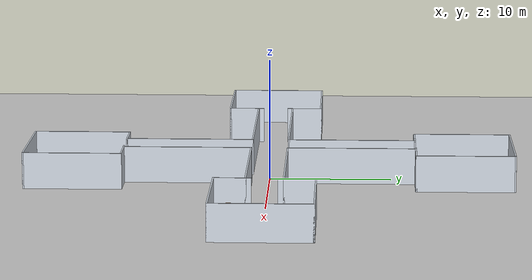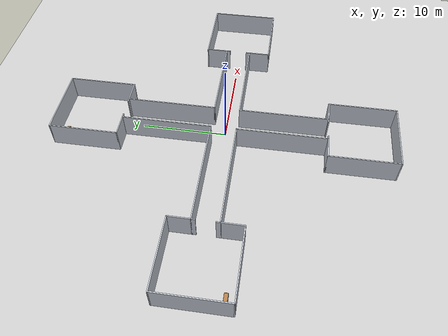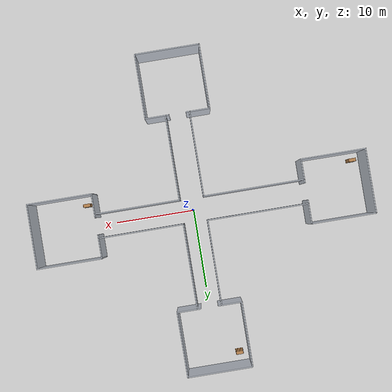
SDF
<sdf version="1.6">
 <world name="semantic_cross_junction">
  <model name="ground_plane">
   <static>true</static>
   <link name="link">
    <collision name="collision">
     <geometry><plane><normal>0 0 1</normal><size>60 60</size></plane></geometry>
    </collision>
    <visual name="visual">
     <geometry><plane><normal>0 0 1</normal><size>60 60</size></plane></geometry>
     <material>
      <script><uri>file://media/materials/scripts/gazebo.material</uri><name>Gazebo/Grey</name></script>
     </material>
    </visual>
   </link>
  </model>
  <model name="semantic_room_structure">
   <static>true</static>
   <link name="walls">
    <collision name="wall_0_collision">
     <pose>0.0 -20.0 1.5 0 0 0.0</pose>
     <geometry><box><size>8.12 0.12 3</size></box></geometry>
    </collision>
    <visual name="wall_0_visual">
     <pose>0.0 -20.0 1.5 0 0 0.0</pose>
     <geometry><box><size>8.12 0.12 3</size></box></geometry>
     <material><ambient>0.82 0.85 0.89 1</ambient><diffuse>0.82 0.85 0.89 1</diffuse></material>
    </visual>
    <collision name="wall_1_collision">
     <pose>-2.75 -12.0 1.5 0 0 0.0</pose>
     <geometry><box><size>2.62 0.12 3</size></box></geometry>
    </collision>
    <visual name="wall_1_visual">
     <pose>-2.75 -12.0 1.5 0 0 0.0</pose>
     <geometry><box><size>2.62 0.12 3</size></box></geometry>
     <material><ambient>0.82 0.85 0.89 1</ambient><diffuse>0.82 0.85 0.89 1</diffuse></material>
    </visual>
    <collision name="wall_2_collision">
     <pose>2.75 -12.0 1.5 0 0 0.0</pose>
     <geometry><box><size>2.62 0.12 3</size></box></geometry>
    </collision>
    <visual name="wall_2_visual">
     <pose>2.75 -12.0 1.5 0 0 0.0</pose>
     <geometry><box><size>2.62 0.12 3</size></box></geometry>
     <material><ambient>0.82 0.85 0.89 1</ambient><diffuse>0.82 0.85 0.89 1</diffuse></material>
    </visual>
    <collision name="wall_3_collision">
     <pose>-18.0 -4.0 1.5 0 0 0.0</pose>
     <geometry><box><size>8.12 0.12 3</size></box></geometry>
    </collision>
    <visual name="wall_3_visual">
     <pose>-18.0 -4.0 1.5 0 0 0.0</pose>
     <geometry><box><size>8.12 0.12 3</size></box></geometry>
     <material><ambient>0.82 0.85 0.89 1</ambient><diffuse>0.82 0.85 0.89 1</diffuse></material>
    </visual>
    <collision name="wall_4_collision">
     <pose>16.0 -4.0 1.5 0 0 0.0</pose>
     <geometry><box><size>8.12 0.12 3</size></box></geometry>
    </collision>
    <visual name="wall_4_visual">
     <pose>16.0 -4.0 1.5 0 0 0.0</pose>
     <geometry><box><size>8.12 0.12 3</size></box></geometry>
     <material><ambient>0.82 0.85 0.89 1</ambient><diffuse>0.82 0.85 0.89 1</diffuse></material>
    </visual>
    <collision name="wall_5_collision">
     <pose>-7.75 -1.5 1.5 0 0 0.0</pose>
     <geometry><box><size>12.62 0.12 3</size></box></geometry>
    </collision>
    <visual name="wall_5_visual">
     <pose>-7.75 -1.5 1.5 0 0 0.0</pose>
     <geometry><box><size>12.62 0.12 3</size></box></geometry>
     <material><ambient>0.82 0.85 0.89 1</ambient><diffuse>0.82 0.85 0.89 1</diffuse></material>
    </visual>
    <collision name="wall_6_collision">
     <pose>6.75 -1.5 1.5 0 0 0.0</pose>
     <geometry><box><size>10.62 0.12 3</size></box></geometry>
    </collision>
    <visual name="wall_6_visual">
     <pose>6.75 -1.5 1.5 0 0 0.0</pose>
     <geometry><box><size>10.62 0.12 3</size></box></geometry>
     <material><ambient>0.82 0.85 0.89 1</ambient><diffuse>0.82 0.85 0.89 1</diffuse></material>
    </visual>
    <collision name="wall_7_collision">
     <pose>-7.75 1.5 1.5 0 0 0.0</pose>
     <geometry><box><size>12.62 0.12 3</size></box></geometry>
    </collision>
    <visual name="wall_7_visual">
     <pose>-7.75 1.5 1.5 0 0 0.0</pose>
     <geometry><box><size>12.62 0.12 3</size></box></geometry>
     <material><ambient>0.82 0.85 0.89 1</ambient><diffuse>0.82 0.85 0.89 1</diffuse></material>
    </visual>
    <collision name="wall_8_collision">
     <pose>6.75 1.5 1.5 0 0 0.0</pose>
     <geometry><box><size>10.62 0.12 3</size></box></geometry>
    </collision>
    <visual name="wall_8_visual">
     <pose>6.75 1.5 1.5 0 0 0.0</pose>
     <geometry><box><size>10.62 0.12 3</size></box></geometry>
     <material><ambient>0.82 0.85 0.89 1</ambient><diffuse>0.82 0.85 0.89 1</diffuse></material>
    </visual>
    <collision name="wall_9_collision">
     <pose>-18.0 4.0 1.5 0 0 0.0</pose>
     <geometry><box><size>8.12 0.12 3</size></box></geometry>
    </collision>
    <visual name="wall_9_visual">
     <pose>-18.0 4.0 1.5 0 0 0.0</pose>
     <geometry><box><size>8.12 0.12 3</size></box></geometry>
     <material><ambient>0.82 0.85 0.89 1</ambient><diffuse>0.82 0.85 0.89 1</diffuse></material>
    </visual>
    <collision name="wall_10_collision">
     <pose>16.0 4.0 1.5 0 0 0.0</pose>
     <geometry><box><size>8.12 0.12 3</size></box></geometry>
    </collision>
    <visual name="wall_10_visual">
     <pose>16.0 4.0 1.5 0 0 0.0</pose>
     <geometry><box><size>8.12 0.12 3</size></box></geometry>
     <material><ambient>0.82 0.85 0.89 1</ambient><diffuse>0.82 0.85 0.89 1</diffuse></material>
    </visual>
    <collision name="wall_11_collision">
     <pose>-2.75 12.0 1.5 0 0 0.0</pose>
     <geometry><box><size>2.62 0.12 3</size></box></geometry>
    </collision>
    <visual name="wall_11_visual">
     <pose>-2.75 12.0 1.5 0 0 0.0</pose>
     <geometry><box><size>2.62 0.12 3</size></box></geometry>
     <material><ambient>0.82 0.85 0.89 1</ambient><diffuse>0.82 0.85 0.89 1</diffuse></material>
    </visual>
    <collision name="wall_12_collision">
     <pose>2.75 12.0 1.5 0 0 0.0</pose>
     <geometry><box><size>2.62 0.12 3</size></box></geometry>
    </collision>
    <visual name="wall_12_visual">
     <pose>2.75 12.0 1.5 0 0 0.0</pose>
     <geometry><box><size>2.62 0.12 3</size></box></geometry>
     <material><ambient>0.82 0.85 0.89 1</ambient><diffuse>0.82 0.85 0.89 1</diffuse></material>
    </visual>
    <collision name="wall_13_collision">
     <pose>0.0 20.0 1.5 0 0 0.0</pose>
     <geometry><box><size>8.12 0.12 3</size></box></geometry>
    </collision>
    <visual name="wall_13_visual">
     <pose>0.0 20.0 1.5 0 0 0.0</pose>
     <geometry><box><size>8.12 0.12 3</size></box></geometry>
     <material><ambient>0.82 0.85 0.89 1</ambient><diffuse>0.82 0.85 0.89 1</diffuse></material>
    </visual>
    <collision name="wall_14_collision">
     <pose>-22.0 0.0 1.5 0 0 1.5707963267948966</pose>
     <geometry><box><size>8.12 0.12 3</size></box></geometry>
    </collision>
    <visual name="wall_14_visual">
     <pose>-22.0 0.0 1.5 0 0 1.5707963267948966</pose>
     <geometry><box><size>8.12 0.12 3</size></box></geometry>
     <material><ambient>0.82 0.85 0.89 1</ambient><diffuse>0.82 0.85 0.89 1</diffuse></material>
    </visual>
    <collision name="wall_15_collision">
     <pose>-14.0 -2.75 1.5 0 0 1.5707963267948966</pose>
     <geometry><box><size>2.62 0.12 3</size></box></geometry>
    </collision>
    <visual name="wall_15_visual">
     <pose>-14.0 -2.75 1.5 0 0 1.5707963267948966</pose>
     <geometry><box><size>2.62 0.12 3</size></box></geometry>
     <material><ambient>0.82 0.85 0.89 1</ambient><diffuse>0.82 0.85 0.89 1</diffuse></material>
    </visual>
    <collision name="wall_16_collision">
     <pose>-14.0 2.75 1.5 0 0 1.5707963267948966</pose>
     <geometry><box><size>2.62 0.12 3</size></box></geometry>
    </collision>
    <visual name="wall_16_visual">
     <pose>-14.0 2.75 1.5 0 0 1.5707963267948966</pose>
     <geometry><box><size>2.62 0.12 3</size></box></geometry>
     <material><ambient>0.82 0.85 0.89 1</ambient><diffuse>0.82 0.85 0.89 1</diffuse></material>
    </visual>
    <collision name="wall_17_collision">
     <pose>-4.0 -16.0 1.5 0 0 1.5707963267948966</pose>
     <geometry><box><size>8.12 0.12 3</size></box></geometry>
    </collision>
    <visual name="wall_17_visual">
     <pose>-4.0 -16.0 1.5 0 0 1.5707963267948966</pose>
     <geometry><box><size>8.12 0.12 3</size></box></geometry>
     <material><ambient>0.82 0.85 0.89 1</ambient><diffuse>0.82 0.85 0.89 1</diffuse></material>
    </visual>
    <collision name="wall_18_collision">
     <pose>-4.0 16.0 1.5 0 0 1.5707963267948966</pose>
     <geometry><box><size>8.12 0.12 3</size></box></geometry>
    </collision>
    <visual name="wall_18_visual">
     <pose>-4.0 16.0 1.5 0 0 1.5707963267948966</pose>
     <geometry><box><size>8.12 0.12 3</size></box></geometry>
     <material><ambient>0.82 0.85 0.89 1</ambient><diffuse>0.82 0.85 0.89 1</diffuse></material>
    </visual>
    <collision name="wall_19_collision">
     <pose>-1.5 -6.75 1.5 0 0 1.5707963267948966</pose>
     <geometry><box><size>10.62 0.12 3</size></box></geometry>
    </collision>
    <visual name="wall_19_visual">
     <pose>-1.5 -6.75 1.5 0 0 1.5707963267948966</pose>
     <geometry><box><size>10.62 0.12 3</size></box></geometry>
     <material><ambient>0.82 0.85 0.89 1</ambient><diffuse>0.82 0.85 0.89 1</diffuse></material>
    </visual>
    <collision name="wall_20_collision">
     <pose>-1.5 6.75 1.5 0 0 1.5707963267948966</pose>
     <geometry><box><size>10.62 0.12 3</size></box></geometry>
    </collision>
    <visual name="wall_20_visual">
     <pose>-1.5 6.75 1.5 0 0 1.5707963267948966</pose>
     <geometry><box><size>10.62 0.12 3</size></box></geometry>
     <material><ambient>0.82 0.85 0.89 1</ambient><diffuse>0.82 0.85 0.89 1</diffuse></material>
    </visual>
    <collision name="wall_21_collision">
     <pose>1.5 -6.75 1.5 0 0 1.5707963267948966</pose>
     <geometry><box><size>10.62 0.12 3</size></box></geometry>
    </collision>
    <visual name="wall_21_visual">
     <pose>1.5 -6.75 1.5 0 0 1.5707963267948966</pose>
     <geometry><box><size>10.62 0.12 3</size></box></geometry>
     <material><ambient>0.82 0.85 0.89 1</ambient><diffuse>0.82 0.85 0.89 1</diffuse></material>
    </visual>
    <collision name="wall_22_collision">
     <pose>1.5 6.75 1.5 0 0 1.5707963267948966</pose>
     <geometry><box><size>10.62 0.12 3</size></box></geometry>
    </collision>
    <visual name="wall_22_visual">
     <pose>1.5 6.75 1.5 0 0 1.5707963267948966</pose>
     <geometry><box><size>10.62 0.12 3</size></box></geometry>
     <material><ambient>0.82 0.85 0.89 1</ambient><diffuse>0.82 0.85 0.89 1</diffuse></material>
    </visual>
    <collision name="wall_23_collision">
     <pose>4.0 -16.0 1.5 0 0 1.5707963267948966</pose>
     <geometry><box><size>8.12 0.12 3</size></box></geometry>
    </collision>
    <visual name="wall_23_visual">
     <pose>4.0 -16.0 1.5 0 0 1.5707963267948966</pose>
     <geometry><box><size>8.12 0.12 3</size></box></geometry>
     <material><ambient>0.82 0.85 0.89 1</ambient><diffuse>0.82 0.85 0.89 1</diffuse></material>
    </visual>
    <collision name="wall_24_collision">
     <pose>4.0 16.0 1.5 0 0 1.5707963267948966</pose>
     <geometry><box><size>8.12 0.12 3</size></box></geometry>
    </collision>
    <visual name="wall_24_visual">
     <pose>4.0 16.0 1.5 0 0 1.5707963267948966</pose>
     <geometry><box><size>8.12 0.12 3</size></box></geometry>
     <material><ambient>0.82 0.85 0.89 1</ambient><diffuse>0.82 0.85 0.89 1</diffuse></material>
    </visual>
    <collision name="wall_25_collision">
     <pose>12.0 -2.75 1.5 0 0 1.5707963267948966</pose>
     <geometry><box><size>2.62 0.12 3</size></box></geometry>
    </collision>
    <visual name="wall_25_visual">
     <pose>12.0 -2.75 1.5 0 0 1.5707963267948966</pose>
     <geometry><box><size>2.62 0.12 3</size></box></geometry>
     <material><ambient>0.82 0.85 0.89 1</ambient><diffuse>0.82 0.85 0.89 1</diffuse></material>
    </visual>
    <collision name="wall_26_collision">
     <pose>12.0 2.75 1.5 0 0 1.5707963267948966</pose>
     <geometry><box><size>2.62 0.12 3</size></box></geometry>
    </collision>
    <visual name="wall_26_visual">
     <pose>12.0 2.75 1.5 0 0 1.5707963267948966</pose>
     <geometry><box><size>2.62 0.12 3</size></box></geometry>
     <material><ambient>0.82 0.85 0.89 1</ambient><diffuse>0.82 0.85 0.89 1</diffuse></material>
    </visual>
    <collision name="wall_27_collision">
     <pose>20.0 0.0 1.5 0 0 1.5707963267948966</pose>
     <geometry><box><size>8.12 0.12 3</size></box></geometry>
    </collision>
    <visual name="wall_27_visual">
     <pose>20.0 0.0 1.5 0 0 1.5707963267948966</pose>
     <geometry><box><size>8.12 0.12 3</size></box></geometry>
     <material><ambient>0.82 0.85 0.89 1</ambient><diffuse>0.82 0.85 0.89 1</diffuse></material>
    </visual>
    <collision name="wall_28_collision">
     <pose>-14.0 -1.3 1.5 0 0 1.5707963267948966</pose>
     <geometry><box><size>0.5199999999999999 0.12 3</size></box></geometry>
    </collision>
    <visual name="wall_28_visual">
     <pose>-14.0 -1.3 1.5 0 0 1.5707963267948966</pose>
     <geometry><box><size>0.5199999999999999 0.12 3</size></box></geometry>
     <material><ambient>0.82 0.85 0.89 1</ambient><diffuse>0.82 0.85 0.89 1</diffuse></material>
    </visual>
    <collision name="wall_29_collision">
     <pose>-14.0 1.3 1.5 0 0 1.5707963267948966</pose>
     <geometry><box><size>0.5199999999999999 0.12 3</size></box></geometry>
    </collision>
    <visual name="wall_29_visual">
     <pose>-14.0 1.3 1.5 0 0 1.5707963267948966</pose>
     <geometry><box><size>0.5199999999999999 0.12 3</size></box></geometry>
     <material><ambient>0.82 0.85 0.89 1</ambient><diffuse>0.82 0.85 0.89 1</diffuse></material>
    </visual>
    <collision name="wall_30_collision">
     <pose>12.0 -1.3 1.5 0 0 1.5707963267948966</pose>
     <geometry><box><size>0.5199999999999999 0.12 3</size></box></geometry>
    </collision>
    <visual name="wall_30_visual">
     <pose>12.0 -1.3 1.5 0 0 1.5707963267948966</pose>
     <geometry><box><size>0.5199999999999999 0.12 3</size></box></geometry>
     <material><ambient>0.82 0.85 0.89 1</ambient><diffuse>0.82 0.85 0.89 1</diffuse></material>
    </visual>
    <collision name="wall_31_collision">
     <pose>12.0 1.3 1.5 0 0 1.5707963267948966</pose>
     <geometry><box><size>0.5199999999999999 0.12 3</size></box></geometry>
    </collision>
    <visual name="wall_31_visual">
     <pose>12.0 1.3 1.5 0 0 1.5707963267948966</pose>
     <geometry><box><size>0.5199999999999999 0.12 3</size></box></geometry>
     <material><ambient>0.82 0.85 0.89 1</ambient><diffuse>0.82 0.85 0.89 1</diffuse></material>
    </visual>
    <collision name="wall_32_collision">
     <pose>-1.3 12.0 1.5 0 0 0.0</pose>
     <geometry><box><size>0.5199999999999999 0.12 3</size></box></geometry>
    </collision>
    <visual name="wall_32_visual">
     <pose>-1.3 12.0 1.5 0 0 0.0</pose>
     <geometry><box><size>0.5199999999999999 0.12 3</size></box></geometry>
     <material><ambient>0.82 0.85 0.89 1</ambient><diffuse>0.82 0.85 0.89 1</diffuse></material>
    </visual>
    <collision name="wall_33_collision">
     <pose>1.3 12.0 1.5 0 0 0.0</pose>
     <geometry><box><size>0.5199999999999999 0.12 3</size></box></geometry>
    </collision>
    <visual name="wall_33_visual">
     <pose>1.3 12.0 1.5 0 0 0.0</pose>
     <geometry><box><size>0.5199999999999999 0.12 3</size></box></geometry>
     <material><ambient>0.82 0.85 0.89 1</ambient><diffuse>0.82 0.85 0.89 1</diffuse></material>
    </visual>
    <collision name="wall_34_collision">
     <pose>-1.3 -12.0 1.5 0 0 0.0</pose>
     <geometry><box><size>0.5199999999999999 0.12 3</size></box></geometry>
    </collision>
    <visual name="wall_34_visual">
     <pose>-1.3 -12.0 1.5 0 0 0.0</pose>
     <geometry><box><size>0.5199999999999999 0.12 3</size></box></geometry>
     <material><ambient>0.82 0.85 0.89 1</ambient><diffuse>0.82 0.85 0.89 1</diffuse></material>
    </visual>
    <collision name="wall_35_collision">
     <pose>1.3 -12.0 1.5 0 0 0.0</pose>
     <geometry><box><size>0.5199999999999999 0.12 3</size></box></geometry>
    </collision>
    <visual name="wall_35_visual">
     <pose>1.3 -12.0 1.5 0 0 0.0</pose>
     <geometry><box><size>0.5199999999999999 0.12 3</size></box></geometry>
     <material><ambient>0.82 0.85 0.89 1</ambient><diffuse>0.82 0.85 0.89 1</diffuse></material>
    </visual>
   </link>
  </model>
  <model name="west_lounge_bookshelf_5">
   <link name="link">
    <inertial><mass>1.0</mass></inertial>
    <collision name="back">
     <pose>0 0.005 0.6 0 0 0</pose>
     <geometry><box><size>0.9 0.01 1.2</size></box></geometry>
    </collision>
    <visual name="visual1">
     <pose>0 0.005 0.6 0 0 0</pose>
     <geometry><box><size>0.9 0.01 1.2</size></box></geometry>
     <material>
      <script><uri>file://media/materials/scripts/gazebo.material</uri><name>Gazebo/Wood</name></script>
     </material>
    </visual>
    <collision name="left_side">
     <pose>0.45 -0.195 0.6 0 0 0</pose>
     <geometry><box><size>0.02 0.4 1.2</size></box></geometry>
    </collision>
    <visual name="visual2">
     <pose>0.45 -0.195 0.6 0 0 0</pose>
     <geometry><box><size>0.02 0.4 1.2</size></box></geometry>
     <material>
      <script><uri>file://media/materials/scripts/gazebo.material</uri><name>Gazebo/Wood</name></script>
     </material>
    </visual>
    <collision name="right_side">
     <pose>-0.45 -0.195 0.6 0 0 0</pose>
     <geometry><box><size>0.02 0.4 1.2</size></box></geometry>
    </collision>
    <visual name="visual3">
     <pose>-0.45 -0.195 0.6 0 0 0</pose>
     <geometry><box><size>0.02 0.4 1.2</size></box></geometry>
     <material>
      <script><uri>file://media/materials/scripts/gazebo.material</uri><name>Gazebo/Wood</name></script>
     </material>
    </visual>
    <collision name="bottom">
     <pose>0 -0.195 0.03 0 0 0</pose>
     <geometry><box><size>0.88 0.4 0.06</size></box></geometry>
    </collision>
    <visual name="visual4">
     <pose>0 -0.195 0.03 0 0 0</pose>
     <geometry><box><size>0.88 0.4 0.06</size></box></geometry>
     <material>
      <script><uri>file://media/materials/scripts/gazebo.material</uri><name>Gazebo/Wood</name></script>
     </material>
    </visual>
    <collision name="top">
     <pose>0 -0.195 1.19 0 0 0</pose>
     <geometry><box><size>0.88 0.4 0.02</size></box></geometry>
    </collision>
    <visual name="visual5">
     <pose>0 -0.195 1.19 0 0 0</pose>
     <geometry><box><size>0.88 0.4 0.02</size></box></geometry>
     <material>
      <script><uri>file://media/materials/scripts/gazebo.material</uri><name>Gazebo/Wood</name></script>
     </material>
    </visual>
    <collision name="low_shelf">
     <pose>0 -0.195 0.43 0 0 0</pose>
     <geometry><box><size>0.88 0.4 0.02</size></box></geometry>
    </collision>
    <visual name="visual6">
     <pose>0 -0.195 0.43 0 0 0</pose>
     <geometry><box><size>0.88 0.4 0.02</size></box></geometry>
     <material>
      <script><uri>file://media/materials/scripts/gazebo.material</uri><name>Gazebo/Wood</name></script>
     </material>
    </visual>
    <collision name="high_shelf">
     <pose>0 -0.195 0.8 0 0 0</pose>
     <geometry><box><size>0.88 0.4 0.02</size></box></geometry>
    </collision>
    <visual name="visual7">
     <pose>0 -0.195 0.8 0 0 0</pose>
     <geometry><box><size>0.88 0.4 0.02</size></box></geometry>
     <material>
      <script><uri>file://media/materials/scripts/gazebo.material</uri><name>Gazebo/Wood</name></script>
     </material>
    </visual>
   </link>
   <pose>-20.8 -2.8 0 0 0 0</pose>
   <static>true</static>
  </model>
  <model name="east_office_bookshelf_12">
   <link name="link">
    <inertial><mass>1.0</mass></inertial>
    <collision name="back">
     <pose>0 0.005 0.6 0 0 0</pose>
     <geometry><box><size>0.9 0.01 1.2</size></box></geometry>
    </collision>
    <visual name="visual1">
     <pose>0 0.005 0.6 0 0 0</pose>
     <geometry><box><size>0.9 0.01 1.2</size></box></geometry>
     <material>
      <script><uri>file://media/materials/scripts/gazebo.material</uri><name>Gazebo/Wood</name></script>
     </material>
    </visual>
    <collision name="left_side">
     <pose>0.45 -0.195 0.6 0 0 0</pose>
     <geometry><box><size>0.02 0.4 1.2</size></box></geometry>
    </collision>
    <visual name="visual2">
     <pose>0.45 -0.195 0.6 0 0 0</pose>
     <geometry><box><size>0.02 0.4 1.2</size></box></geometry>
     <material>
      <script><uri>file://media/materials/scripts/gazebo.material</uri><name>Gazebo/Wood</name></script>
     </material>
    </visual>
    <collision name="right_side">
     <pose>-0.45 -0.195 0.6 0 0 0</pose>
     <geometry><box><size>0.02 0.4 1.2</size></box></geometry>
    </collision>
    <visual name="visual3">
     <pose>-0.45 -0.195 0.6 0 0 0</pose>
     <geometry><box><size>0.02 0.4 1.2</size></box></geometry>
     <material>
      <script><uri>file://media/materials/scripts/gazebo.material</uri><name>Gazebo/Wood</name></script>
     </material>
    </visual>
    <collision name="bottom">
     <pose>0 -0.195 0.03 0 0 0</pose>
     <geometry><box><size>0.88 0.4 0.06</size></box></geometry>
    </collision>
    <visual name="visual4">
     <pose>0 -0.195 0.03 0 0 0</pose>
     <geometry><box><size>0.88 0.4 0.06</size></box></geometry>
     <material>
      <script><uri>file://media/materials/scripts/gazebo.material</uri><name>Gazebo/Wood</name></script>
     </material>
    </visual>
    <collision name="top">
     <pose>0 -0.195 1.19 0 0 0</pose>
     <geometry><box><size>0.88 0.4 0.02</size></box></geometry>
    </collision>
    <visual name="visual5">
     <pose>0 -0.195 1.19 0 0 0</pose>
     <geometry><box><size>0.88 0.4 0.02</size></box></geometry>
     <material>
      <script><uri>file://media/materials/scripts/gazebo.material</uri><name>Gazebo/Wood</name></script>
     </material>
    </visual>
    <collision name="low_shelf">
     <pose>0 -0.195 0.43 0 0 0</pose>
     <geometry><box><size>0.88 0.4 0.02</size></box></geometry>
    </collision>
    <visual name="visual6">
     <pose>0 -0.195 0.43 0 0 0</pose>
     <geometry><box><size>0.88 0.4 0.02</size></box></geometry>
     <material>
      <script><uri>file://media/materials/scripts/gazebo.material</uri><name>Gazebo/Wood</name></script>
     </material>
    </visual>
    <collision name="high_shelf">
     <pose>0 -0.195 0.8 0 0 0</pose>
     <geometry><box><size>0.88 0.4 0.02</size></box></geometry>
    </collision>
    <visual name="visual7">
     <pose>0 -0.195 0.8 0 0 0</pose>
     <geometry><box><size>0.88 0.4 0.02</size></box></geometry>
     <material>
      <script><uri>file://media/materials/scripts/gazebo.material</uri><name>Gazebo/Wood</name></script>
     </material>
    </visual>
   </link>
   <pose>13.2 -2.6 0 0 0 0</pose>
   <static>true</static>
  </model>
  <model name="north_meeting_bookshelf_11">
   <link name="link">
    <inertial><mass>1.0</mass></inertial>
    <collision name="back">
     <pose>0 0.005 0.6 0 0 0</pose>
     <geometry><box><size>0.9 0.01 1.2</size></box></geometry>
    </collision>
    <visual name="visual1">
     <pose>0 0.005 0.6 0 0 0</pose>
     <geometry><box><size>0.9 0.01 1.2</size></box></geometry>
     <material>
      <script><uri>file://media/materials/scripts/gazebo.material</uri><name>Gazebo/Wood</name></script>
     </material>
    </visual>
    <collision name="left_side">
     <pose>0.45 -0.195 0.6 0 0 0</pose>
     <geometry><box><size>0.02 0.4 1.2</size></box></geometry>
    </collision>
    <visual name="visual2">
     <pose>0.45 -0.195 0.6 0 0 0</pose>
     <geometry><box><size>0.02 0.4 1.2</size></box></geometry>
     <material>
      <script><uri>file://media/materials/scripts/gazebo.material</uri><name>Gazebo/Wood</name></script>
     </material>
    </visual>
    <collision name="right_side">
     <pose>-0.45 -0.195 0.6 0 0 0</pose>
     <geometry><box><size>0.02 0.4 1.2</size></box></geometry>
    </collision>
    <visual name="visual3">
     <pose>-0.45 -0.195 0.6 0 0 0</pose>
     <geometry><box><size>0.02 0.4 1.2</size></box></geometry>
     <material>
      <script><uri>file://media/materials/scripts/gazebo.material</uri><name>Gazebo/Wood</name></script>
     </material>
    </visual>
    <collision name="bottom">
     <pose>0 -0.195 0.03 0 0 0</pose>
     <geometry><box><size>0.88 0.4 0.06</size></box></geometry>
    </collision>
    <visual name="visual4">
     <pose>0 -0.195 0.03 0 0 0</pose>
     <geometry><box><size>0.88 0.4 0.06</size></box></geometry>
     <material>
      <script><uri>file://media/materials/scripts/gazebo.material</uri><name>Gazebo/Wood</name></script>
     </material>
    </visual>
    <collision name="top">
     <pose>0 -0.195 1.19 0 0 0</pose>
     <geometry><box><size>0.88 0.4 0.02</size></box></geometry>
    </collision>
    <visual name="visual5">
     <pose>0 -0.195 1.19 0 0 0</pose>
     <geometry><box><size>0.88 0.4 0.02</size></box></geometry>
     <material>
      <script><uri>file://media/materials/scripts/gazebo.material</uri><name>Gazebo/Wood</name></script>
     </material>
    </visual>
    <collision name="low_shelf">
     <pose>0 -0.195 0.43 0 0 0</pose>
     <geometry><box><size>0.88 0.4 0.02</size></box></geometry>
    </collision>
    <visual name="visual6">
     <pose>0 -0.195 0.43 0 0 0</pose>
     <geometry><box><size>0.88 0.4 0.02</size></box></geometry>
     <material>
      <script><uri>file://media/materials/scripts/gazebo.material</uri><name>Gazebo/Wood</name></script>
     </material>
    </visual>
    <collision name="high_shelf">
     <pose>0 -0.195 0.8 0 0 0</pose>
     <geometry><box><size>0.88 0.4 0.02</size></box></geometry>
    </collision>
    <visual name="visual7">
     <pose>0 -0.195 0.8 0 0 0</pose>
     <geometry><box><size>0.88 0.4 0.02</size></box></geometry>
     <material>
      <script><uri>file://media/materials/scripts/gazebo.material</uri><name>Gazebo/Wood</name></script>
     </material>
    </visual>
   </link>
   <pose>-2.8 18.8 0 0 0 0</pose>
   <static>true</static>
  </model>
 </world>
</sdf>
